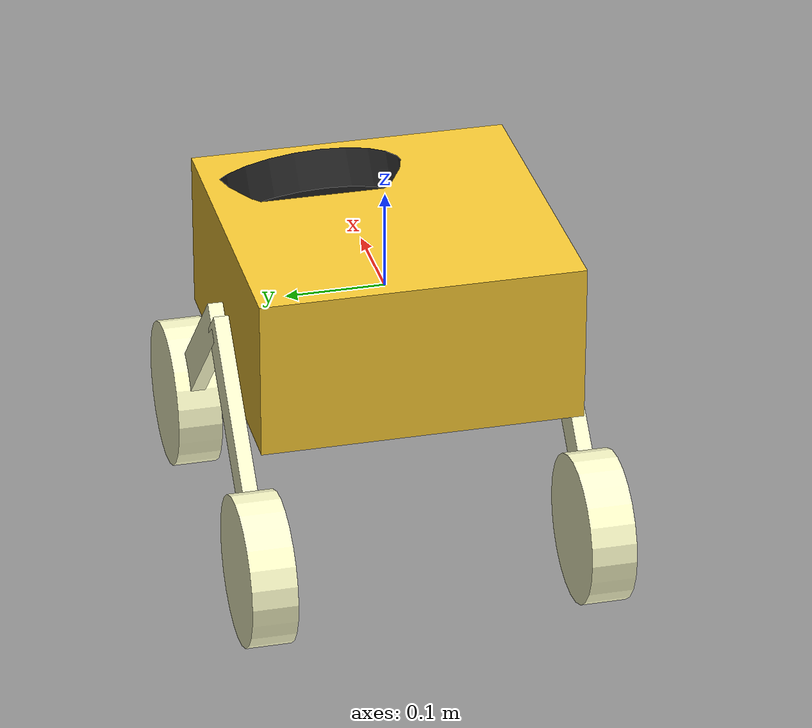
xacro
<?xml version="1.0"?>
<robot xmlns:xacro="http://www.ros.org/wiki/xacro" name="octanis1">

	<!-- NAME OF THE ROBOT -->
	<xacro:property name="name_robot" value="octanis1" />
	<!-- POSITION CONSTANTS (only whose which can change) -->
	<xacro:property name="length_LIDAR" value="0.04" />
	<xacro:property name="radius_LIDAR" value="0.1" />
	<xacro:property name="radius_wheel" value="0.075" />
	<xacro:property name="length_wheel" value="0.045" />
	<!-- INERTIAL CONSTANTS (because they can change) -->
	<xacro:property name="weight_box" value="2.5" />
	<xacro:property name="weight_LIDAR" value="0.2" />
   <xacro:property name="weight_dGPS" value="0.1" />
	<xacro:property name="weight_axe" value="0.3" />
	<xacro:property name="weight_wheel" value="0.2" />
	<xacro:property name="std_ixx" value="100" />
	<xacro:property name="std_ixy" value="0" />
	<xacro:property name="std_ixz" value="0" />
	<xacro:property name="std_iyy" value="100" />
	<xacro:property name="std_iyz" value="0" />
	<xacro:property name="std_izz" value="100" />
	<xacro:macro name="default_inertia" params="mass">
		<inertial>
			<origin />
			<mass value="${mass}"/>
			<inertia ixx="${std_ixx}"  ixy="${std_ixy}"  ixz="${std_ixz}" iyy="${std_iyy}" iyz="${std_iyz}" izz="${std_izz}" />
		</inertial>
	</xacro:macro>

	<link name="base_link">
		<xacro:default_inertia mass="${weight_box}"/>
		<visual>
			<origin xyz="0 0 0" rpy="0 0 0"/>
			<geometry>
				<box size="0.32 0.32 0.16" />
			</geometry>
			<material name="yellow">
				<color rgba="0.97 0.79 0.2 1"/>
			</material>
		</visual>

		<collision>
			<origin xyz="0 0 0" rpy="0 0 0"/>
			<geometry>
				<box size="0.32 0.32 0.16" />
			</geometry>
		</collision>
	</link>

	<link name="axe_front_left">
		<xacro:default_inertia mass="${weight_axe}"/>
		<visual>
			<origin xyz="0.1375 0 0" rpy="0 0 0"/>
			<geometry>
				<box size="0.275 0.015 0.04" />
			</geometry>
			<material name="white">
        		<color rgba="1 1 0.8 1"/>
        	</material>
		</visual>

	</link>
	<link name="axe_front_right">
		<xacro:default_inertia mass="${weight_axe}"/>
		<visual>
			<origin xyz="0.1375 0 0" rpy="0 0 0"/>
			<geometry>
				<box size="0.275 0.015 0.04" />
			</geometry>
			<material name="white" />
		</visual>

	</link>
	<link name="axe_back_right">
		<xacro:default_inertia mass="${weight_axe}"/>
		<visual>
			<origin xyz="-0.1375 0 0" rpy="0 0 0"/>
			<geometry>
				<box size="0.275 0.015 0.04" />
			</geometry>
			<material name="white" />
		</visual>

	</link>
	<link name="axe_back_left">
		<xacro:default_inertia mass="${weight_axe}"/>
		<visual>
			<origin xyz="-0.1375 0 0" rpy="0 0 0"/>
			<geometry>
				<box size="0.275 0.015 0.04" />
			</geometry>
			<material name="white" />
		</visual>
	</link>
	<link name="wheel_front_left">
		<xacro:default_inertia mass="${weight_wheel}"/>
		<visual>
			<origin xyz="0 0 0" rpy="1.57 0 0"/>
			<geometry>
				<cylinder length="${length_wheel}" radius="${radius_wheel}"/>
			</geometry>
			<material name="white" />
		</visual>
	</link>
	<link name="wheel_front_right">
		<xacro:default_inertia mass="${weight_wheel}"/>
		<visual>
			<origin xyz="0 0 0" rpy="1.57 0 0"/>
			<geometry>
				<cylinder length="${length_wheel}" radius="${radius_wheel}"/>
			</geometry>
			<material name="white" />
		</visual>
	</link>
	<link name="wheel_back_right">
		<xacro:default_inertia mass="${weight_wheel}"/>
		<visual>
			<origin xyz="0 0 0" rpy="1.57 0 0"/>
			<geometry>
				<cylinder length="${length_wheel}" radius="${radius_wheel}"/>
			</geometry>
			<material name="white" />
		</visual>

	</link>
	<link name="wheel_back_left">
		<xacro:default_inertia mass="${weight_wheel}"/>
		<visual>
			<origin xyz="0 0 0" rpy="1.57 0 0"/>
			<geometry>
				<cylinder length="${length_wheel}" radius="${radius_wheel}"/>
			</geometry>
			<material name="white" />
		</visual>

	</link>

	<link name="LIDAR">
		<xacro:default_inertia mass="${weight_LIDAR}"/>
		<visual>
			<origin rpy="0 0 0" xyz="0 0 0"/>
			<geometry>
				<cylinder length="${length_LIDAR}" radius="${radius_LIDAR}"/>
			</geometry>
			<material name="black" />
		</visual>
	</link>

	<link name="dGPS">
		<xacro:default_inertia mass="${weight_dGPS}"/>
	</link>

	<link name="IMU" />
	<link name="IMU2" />

	<joint name="joint_axe_front_left" type="fixed">
		<parent link="base_link" />
		<child link="axe_front_left" />
		<origin xyz="0 -0.1675 -0.02" rpy="0 0.78 0" />
		<axis xyz="0 1 0" />
	</joint>

	<joint name="joint_axe_front_right" type="fixed">
		<parent link="base_link" />
		<child link="axe_front_right" />
		<origin xyz="0 0.1675 -0.02" rpy="0 0.78 0" />
		<axis xyz="0 1 0" />
	</joint>

	<joint name="joint_axe_back_right" type="fixed">
		<parent link="base_link" />
		<child link="axe_back_right" />
		<origin xyz="0 0.1675 -0.02" rpy="0 -0.78 0" />
		<axis xyz="0 1 0" />
	</joint>

	<joint name="joint_axe_back_left" type="fixed">
		<parent link="base_link" />
		<child link="axe_back_left" />
		<origin xyz="0 -0.1675 -0.02" rpy="0 -0.78 0" />
		<axis xyz="0 1 0" />
	</joint>

	<joint name="joint_LIDAR" type="fixed">
		<parent link="base_link" />
		<child link="LIDAR" />
		<origin rpy="0 0.78 0" xyz="0.12 0.05 0.04"/>
	</joint>

	<joint name="joint_dGPS" type="fixed">
		<parent link="base_link" />
		<child link="dGPS" />
		<origin xyz="-0.1 0 0.1" rpy="0 0 0" />
	</joint>

	<joint name="joint_IMU" type="fixed">
		<parent link="base_link" />
		<child link="IMU" />
		<origin xyz="0 0 -0.055" rpy="0 0 0" />
	</joint>

	<joint name="joint_IMU2" type="fixed">
		<parent link="base_link" />
		<child link="IMU2" />
		<origin xyz="0 0.08 -0.03" rpy="0 0 0" />
	</joint>

	<joint name="joint_wheel_front_left" type="fixed">
		<parent link="axe_front_left" />
		<child link="wheel_front_left" />
		<origin xyz="0.25 0 0" rpy="0 0 0" />
		<axis xyz="0 1 0" />
	</joint>

	<joint name="joint_wheel_front_right" type="fixed">
		<parent link="axe_front_right" />
		<child link="wheel_front_right" />
		<origin xyz="0.25 0 0" rpy="0 0 0" />
		<axis xyz="0 1 0" />
	</joint>

	<joint name="joint_wheel_back_right" type="fixed">
		<parent link="axe_back_right" />
		<child link="wheel_back_right" />
		<origin xyz="-0.25 0 0" rpy="0 0 0" />
		<axis xyz="0 1 0" />
	</joint>

	<joint name="joint_wheel_back_left" type="fixed">
		<parent link="axe_back_left" />
		<child link="wheel_back_left" />
		<origin xyz="-0.25 0 0" rpy="0 0 0" />
		<axis xyz="0 1 0" />
	</joint>
</robot>
